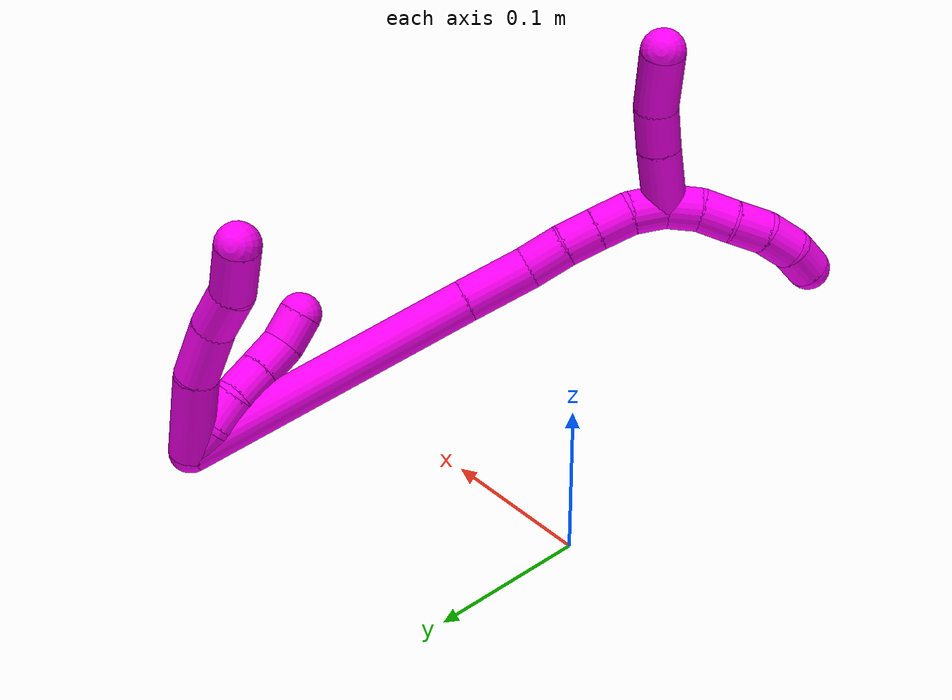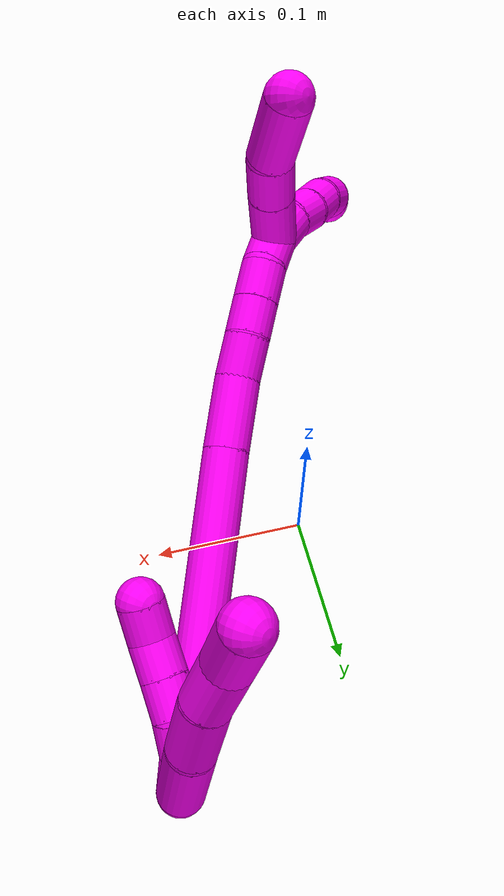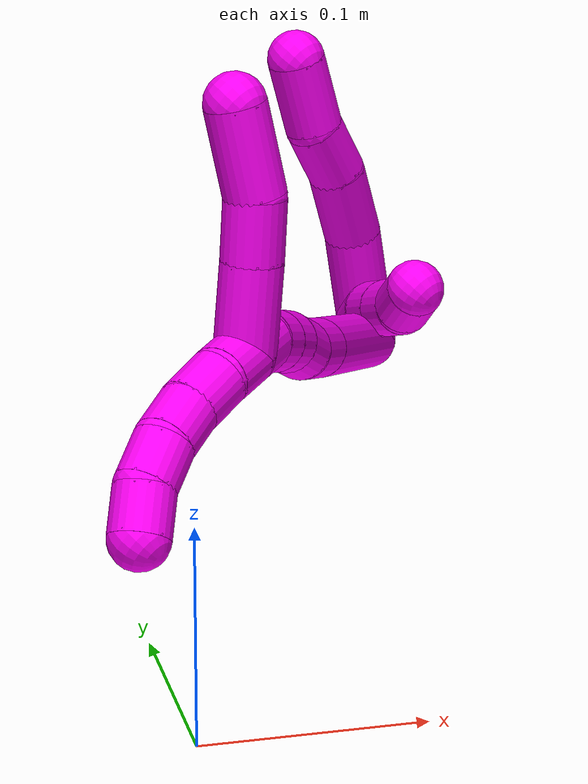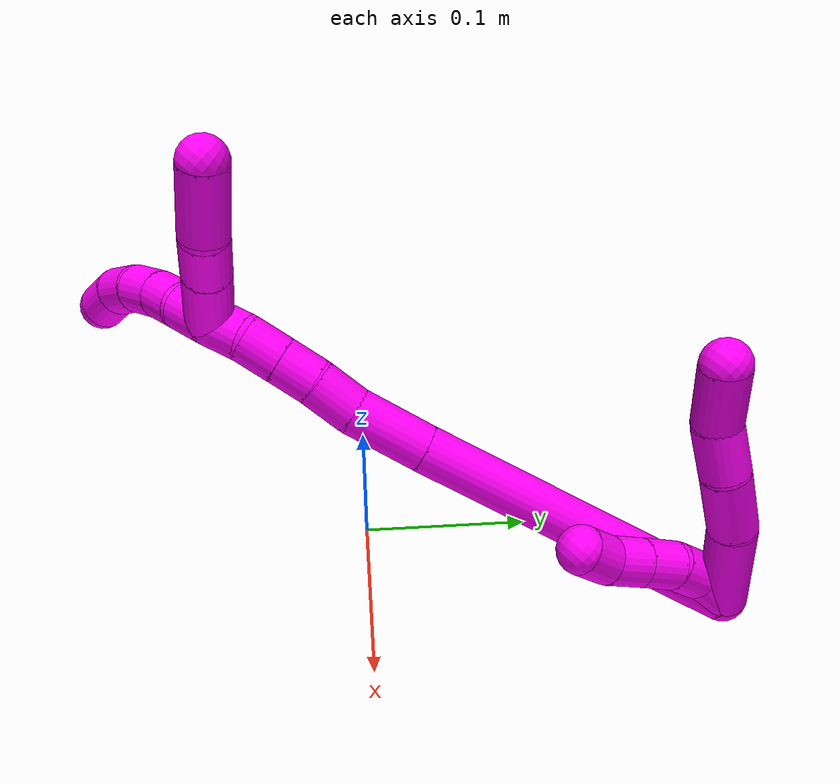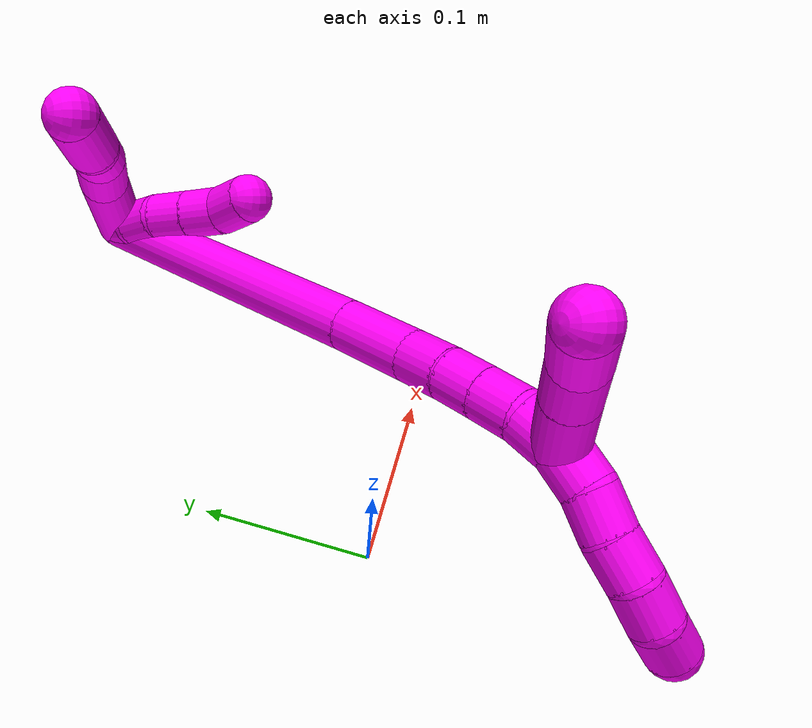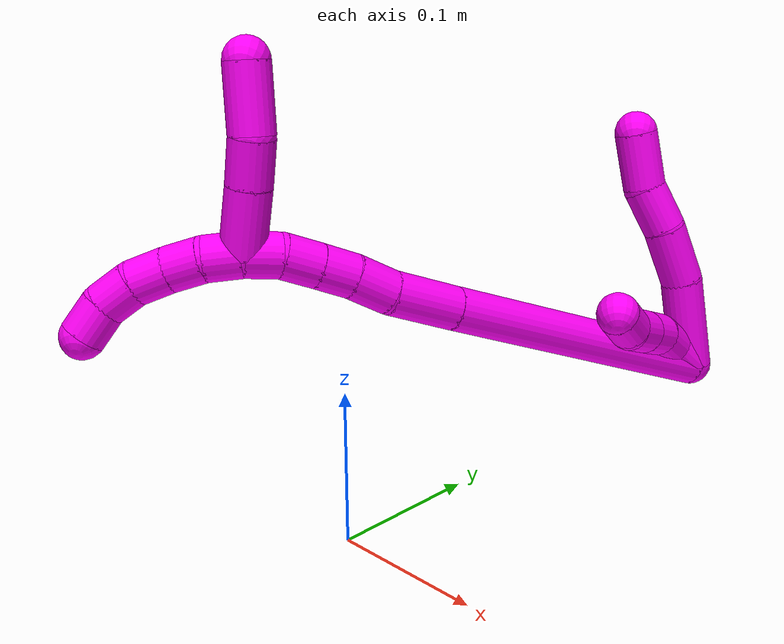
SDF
<sdf version="1.7">
 <world name="default">
  <model name="10">
   <static>0</static>
   <link name="10">
    <collision name="collision-cylinder-e_1_2_8">
     <pose>0.023569 0.002086 0.013637 -0.151816 1.04123 -0.087161</pose>
     <geometry><cylinder><radius>0.0125</radius><length>0.054619</length></cylinder></geometry>
     <surface>
      <friction><ode><mu>1.16</mu><mu2>1.16</mu2><slip1>0</slip1><slip2>0</slip2></ode></friction>
      <contact><ode><kp>1e+06</kp><kd>1</kd><max_vel>0</max_vel><min_depth>0.001</min_depth></ode></contact>
     </surface>
    </collision>
    <visual name="visual-cylinder-e_1_2_8">
     <pose>0.023569 0.002086 0.013637 -0.151816 1.04123 -0.087161</pose>
     <geometry><cylinder><radius>0.0125</radius><length>0.054619</length></cylinder></geometry>
     <material><ambient>1 0 0.964706 1</ambient></material>
    </visual>
    <collision name="collision-cylinder-e_2_8_9">
     <pose>0.063008 0.002191 0.034694 0.260923 1.12008 0.164166</pose>
     <geometry><cylinder><radius>0.0125</radius><length>0.035262</length></cylinder></geometry>
     <surface>
      <friction><ode><mu>1.16</mu><mu2>1.16</mu2><slip1>0</slip1><slip2>0</slip2></ode></friction>
      <contact><ode><kp>1e+06</kp><kd>1</kd><max_vel>0</max_vel><min_depth>0.001</min_depth></ode></contact>
     </surface>
    </collision>
    <visual name="visual-cylinder-e_2_8_9">
     <pose>0.063008 0.002191 0.034694 0.260923 1.12008 0.164166</pose>
     <geometry><cylinder><radius>0.0125</radius><length>0.035262</length></cylinder></geometry>
     <material><ambient>1 0 0.964706 1</ambient></material>
    </visual>
    <collision name="collision-cylinder-e_3_9_10">
     <pose>0.090321 -0.003273 0.048703 0.486305 0.993455 0.267325</pose>
     <geometry><cylinder><radius>0.0125</radius><length>0.027311</length></cylinder></geometry>
     <surface>
      <friction><ode><mu>1.16</mu><mu2>1.16</mu2><slip1>0</slip1><slip2>0</slip2></ode></friction>
      <contact><ode><kp>1e+06</kp><kd>1</kd><max_vel>0</max_vel><min_depth>0.001</min_depth></ode></contact>
     </surface>
    </collision>
    <visual name="visual-cylinder-e_3_9_10">
     <pose>0.090321 -0.003273 0.048703 0.486305 0.993455 0.267325</pose>
     <geometry><cylinder><radius>0.0125</radius><length>0.027311</length></cylinder></geometry>
     <material><ambient>1 0 0.964706 1</ambient></material>
    </visual>
    <collision name="collision-cylinder-e_4_10_6">
     <pose>0.115156 -0.006421 0.064758 -0.035474 0.955288 -0.018363</pose>
     <geometry><cylinder><radius>0.0125</radius><length>0.032808</length></cylinder></geometry>
     <surface>
      <friction><ode><mu>1.16</mu><mu2>1.16</mu2><slip1>0</slip1><slip2>0</slip2></ode></friction>
      <contact><ode><kp>1e+06</kp><kd>1</kd><max_vel>0</max_vel><min_depth>0.001</min_depth></ode></contact>
     </surface>
    </collision>
    <visual name="visual-cylinder-e_4_10_6">
     <pose>0.115156 -0.006421 0.064758 -0.035474 0.955288 -0.018363</pose>
     <geometry><cylinder><radius>0.0125</radius><length>0.032808</length></cylinder></geometry>
     <material><ambient>1 0 0.964706 1</ambient></material>
    </visual>
    <collision name="collision-cylinder-e_1_2_11">
     <pose>0.009267 -0.003755 0.000169 1.52586 1.18549 1.1442</pose>
     <geometry><cylinder><radius>0.0125</radius><length>0.02</length></cylinder></geometry>
     <surface>
      <friction><ode><mu>1.16</mu><mu2>1.16</mu2><slip1>0</slip1><slip2>0</slip2></ode></friction>
      <contact><ode><kp>1e+06</kp><kd>1</kd><max_vel>0</max_vel><min_depth>0.001</min_depth></ode></contact>
     </surface>
    </collision>
    <visual name="visual-cylinder-e_1_2_11">
     <pose>0.009267 -0.003755 0.000169 1.52586 1.18549 1.1442</pose>
     <geometry><cylinder><radius>0.0125</radius><length>0.02</length></cylinder></geometry>
     <material><ambient>1 0 0.964706 1</ambient></material>
    </visual>
    <collision name="collision-cylinder-e_2_11_12">
     <pose>0.027977 -0.009604 -0.002201 2.4518 1.23545 2.20528</pose>
     <geometry><cylinder><radius>0.0125</radius><length>0.02</length></cylinder></geometry>
     <surface>
      <friction><ode><mu>1.16</mu><mu2>1.16</mu2><slip1>0</slip1><slip2>0</slip2></ode></friction>
      <contact><ode><kp>1e+06</kp><kd>1</kd><max_vel>0</max_vel><min_depth>0.001</min_depth></ode></contact>
     </surface>
    </collision>
    <visual name="visual-cylinder-e_2_11_12">
     <pose>0.027977 -0.009604 -0.002201 2.4518 1.23545 2.20528</pose>
     <geometry><cylinder><radius>0.0125</radius><length>0.02</length></cylinder></geometry>
     <material><ambient>1 0 0.964706 1</ambient></material>
    </visual>
    <collision name="collision-cylinder-e_3_12_13">
     <pose>0.045648 -0.014324 -0.00978 2.6613 0.966355 2.26823</pose>
     <geometry><cylinder><radius>0.0125</radius><length>0.02</length></cylinder></geometry>
     <surface>
      <friction><ode><mu>1.16</mu><mu2>1.16</mu2><slip1>0</slip1><slip2>0</slip2></ode></friction>
      <contact><ode><kp>1e+06</kp><kd>1</kd><max_vel>0</max_vel><min_depth>0.001</min_depth></ode></contact>
     </surface>
    </collision>
    <visual name="visual-cylinder-e_3_12_13">
     <pose>0.045648 -0.014324 -0.00978 2.6613 0.966355 2.26823</pose>
     <geometry><cylinder><radius>0.0125</radius><length>0.02</length></cylinder></geometry>
     <material><ambient>1 0 0.964706 1</ambient></material>
    </visual>
    <collision name="collision-cylinder-e_4_13_14">
     <pose>0.062104 -0.019419 -0.019938 2.69205 0.966392 2.3197</pose>
     <geometry><cylinder><radius>0.0125</radius><length>0.02</length></cylinder></geometry>
     <surface>
      <friction><ode><mu>1.16</mu><mu2>1.16</mu2><slip1>0</slip1><slip2>0</slip2></ode></friction>
      <contact><ode><kp>1e+06</kp><kd>1</kd><max_vel>0</max_vel><min_depth>0.001</min_depth></ode></contact>
     </surface>
    </collision>
    <visual name="visual-cylinder-e_4_13_14">
     <pose>0.062104 -0.019419 -0.019938 2.69205 0.966392 2.3197</pose>
     <geometry><cylinder><radius>0.0125</radius><length>0.02</length></cylinder></geometry>
     <material><ambient>1 0 0.964706 1</ambient></material>
    </visual>
    <collision name="collision-cylinder-e_5_14_5">
     <pose>0.080001 -0.023006 -0.027354 2.68893 1.31233 2.56039</pose>
     <geometry><cylinder><radius>0.0125</radius><length>0.02</length></cylinder></geometry>
     <surface>
      <friction><ode><mu>1.16</mu><mu2>1.16</mu2><slip1>0</slip1><slip2>0</slip2></ode></friction>
      <contact><ode><kp>1e+06</kp><kd>1</kd><max_vel>0</max_vel><min_depth>0.001</min_depth></ode></contact>
     </surface>
    </collision>
    <visual name="visual-cylinder-e_5_14_5">
     <pose>0.080001 -0.023006 -0.027354 2.68893 1.31233 2.56039</pose>
     <geometry><cylinder><radius>0.0125</radius><length>0.02</length></cylinder></geometry>
     <material><ambient>1 0 0.964706 1</ambient></material>
    </visual>
    <collision name="collision-cylinder-e_1_2_15">
     <pose>0.065156 -0.053714 -0.021739 1.95535 0.843896 1.17502</pose>
     <geometry><cylinder><radius>0.0125</radius><length>0.174391</length></cylinder></geometry>
     <surface>
      <friction><ode><mu>1.16</mu><mu2>1.16</mu2><slip1>0</slip1><slip2>0</slip2></ode></friction>
      <contact><ode><kp>1e+06</kp><kd>1</kd><max_vel>0</max_vel><min_depth>0.001</min_depth></ode></contact>
     </surface>
    </collision>
    <visual name="visual-cylinder-e_1_2_15">
     <pose>0.065156 -0.053714 -0.021739 1.95535 0.843896 1.17502</pose>
     <geometry><cylinder><radius>0.0125</radius><length>0.174391</length></cylinder></geometry>
     <material><ambient>1 0 0.964706 1</ambient></material>
    </visual>
    <collision name="collision-cylinder-e_2_15_16">
     <pose>0.145263 -0.120082 -0.048018 1.91531 0.838441 1.12918</pose>
     <geometry><cylinder><radius>0.0125</radius><length>0.040213</length></cylinder></geometry>
     <surface>
      <friction><ode><mu>1.16</mu><mu2>1.16</mu2><slip1>0</slip1><slip2>0</slip2></ode></friction>
      <contact><ode><kp>1e+06</kp><kd>1</kd><max_vel>0</max_vel><min_depth>0.001</min_depth></ode></contact>
     </surface>
    </collision>
    <visual name="visual-cylinder-e_2_15_16">
     <pose>0.145263 -0.120082 -0.048018 1.91531 0.838441 1.12918</pose>
     <geometry><cylinder><radius>0.0125</radius><length>0.040213</length></cylinder></geometry>
     <material><ambient>1 0 0.964706 1</ambient></material>
    </visual>
    <collision name="collision-cylinder-e_3_16_17">
     <pose>0.169738 -0.139924 -0.053461 1.6958 0.920519 1.02397</pose>
     <geometry><cylinder><radius>0.0125</radius><length>0.023933</length></cylinder></geometry>
     <surface>
      <friction><ode><mu>1.16</mu><mu2>1.16</mu2><slip1>0</slip1><slip2>0</slip2></ode></friction>
      <contact><ode><kp>1e+06</kp><kd>1</kd><max_vel>0</max_vel><min_depth>0.001</min_depth></ode></contact>
     </surface>
    </collision>
    <visual name="visual-cylinder-e_3_16_17">
     <pose>0.169738 -0.139924 -0.053461 1.6958 0.920519 1.02397</pose>
     <geometry><cylinder><radius>0.0125</radius><length>0.023933</length></cylinder></geometry>
     <material><ambient>1 0 0.964706 1</ambient></material>
    </visual>
    <collision name="collision-cylinder-e_4_17_18">
     <pose>0.186748 -0.153769 -0.055946 1.80397 0.830225 1.0174</pose>
     <geometry><cylinder><radius>0.0125</radius><length>0.020284</length></cylinder></geometry>
     <surface>
      <friction><ode><mu>1.16</mu><mu2>1.16</mu2><slip1>0</slip1><slip2>0</slip2></ode></friction>
      <contact><ode><kp>1e+06</kp><kd>1</kd><max_vel>0</max_vel><min_depth>0.001</min_depth></ode></contact>
     </surface>
    </collision>
    <visual name="visual-cylinder-e_4_17_18">
     <pose>0.186748 -0.153769 -0.055946 1.80397 0.830225 1.0174</pose>
     <geometry><cylinder><radius>0.0125</radius><length>0.020284</length></cylinder></geometry>
     <material><ambient>1 0 0.964706 1</ambient></material>
    </visual>
    <collision name="collision-cylinder-e_5_18_19">
     <pose>0.201874 -0.167475 -0.05922 1.80648 0.811704 0.99818</pose>
     <geometry><cylinder><radius>0.0125</radius><length>0.021065</length></cylinder></geometry>
     <surface>
      <friction><ode><mu>1.16</mu><mu2>1.16</mu2><slip1>0</slip1><slip2>0</slip2></ode></friction>
      <contact><ode><kp>1e+06</kp><kd>1</kd><max_vel>0</max_vel><min_depth>0.001</min_depth></ode></contact>
     </surface>
    </collision>
    <visual name="visual-cylinder-e_5_18_19">
     <pose>0.201874 -0.167475 -0.05922 1.80648 0.811704 0.99818</pose>
     <geometry><cylinder><radius>0.0125</radius><length>0.021065</length></cylinder></geometry>
     <material><ambient>1 0 0.964706 1</ambient></material>
    </visual>
    <collision name="collision-cylinder-e_6_19_1">
     <pose>0.214701 -0.182718 -0.06358 1.88548 0.541709 0.730489</pose>
     <geometry><cylinder><radius>0.0125</radius><length>0.020115</length></cylinder></geometry>
     <surface>
      <friction><ode><mu>1.16</mu><mu2>1.16</mu2><slip1>0</slip1><slip2>0</slip2></ode></friction>
      <contact><ode><kp>1e+06</kp><kd>1</kd><max_vel>0</max_vel><min_depth>0.001</min_depth></ode></contact>
     </surface>
    </collision>
    <visual name="visual-cylinder-e_6_19_1">
     <pose>0.214701 -0.182718 -0.06358 1.88548 0.541709 0.730489</pose>
     <geometry><cylinder><radius>0.0125</radius><length>0.020115</length></cylinder></geometry>
     <material><ambient>1 0 0.964706 1</ambient></material>
    </visual>
    <collision name="collision-cylinder-e_1_1_20">
     <pose>0.234553 -0.183915 -0.05725 -0.661053 0.91017 -0.332696</pose>
     <geometry><cylinder><radius>0.0125</radius><length>0.037149</length></cylinder></geometry>
     <surface>
      <friction><ode><mu>1.16</mu><mu2>1.16</mu2><slip1>0</slip1><slip2>0</slip2></ode></friction>
      <contact><ode><kp>1e+06</kp><kd>1</kd><max_vel>0</max_vel><min_depth>0.001</min_depth></ode></contact>
     </surface>
    </collision>
    <visual name="visual-cylinder-e_1_1_20">
     <pose>0.234553 -0.183915 -0.05725 -0.661053 0.91017 -0.332696</pose>
     <geometry><cylinder><radius>0.0125</radius><length>0.037149</length></cylinder></geometry>
     <material><ambient>1 0 0.964706 1</ambient></material>
    </visual>
    <collision name="collision-cylinder-e_2_20_21">
     <pose>0.259421 -0.172492 -0.041937 -0.611173 0.923401 -0.311393</pose>
     <geometry><cylinder><radius>0.0125</radius><length>0.025579</length></cylinder></geometry>
     <surface>
      <friction><ode><mu>1.16</mu><mu2>1.16</mu2><slip1>0</slip1><slip2>0</slip2></ode></friction>
      <contact><ode><kp>1e+06</kp><kd>1</kd><max_vel>0</max_vel><min_depth>0.001</min_depth></ode></contact>
     </surface>
    </collision>
    <visual name="visual-cylinder-e_2_20_21">
     <pose>0.259421 -0.172492 -0.041937 -0.611173 0.923401 -0.311393</pose>
     <geometry><cylinder><radius>0.0125</radius><length>0.025579</length></cylinder></geometry>
     <material><ambient>1 0 0.964706 1</ambient></material>
    </visual>
    <collision name="collision-cylinder-e_3_21_4">
     <pose>0.28367 -0.165431 -0.02366 -0.216839 0.853785 -0.09894</pose>
     <geometry><cylinder><radius>0.0125</radius><length>0.037272</length></cylinder></geometry>
     <surface>
      <friction><ode><mu>1.16</mu><mu2>1.16</mu2><slip1>0</slip1><slip2>0</slip2></ode></friction>
      <contact><ode><kp>1e+06</kp><kd>1</kd><max_vel>0</max_vel><min_depth>0.001</min_depth></ode></contact>
     </surface>
    </collision>
    <visual name="visual-cylinder-e_3_21_4">
     <pose>0.28367 -0.165431 -0.02366 -0.216839 0.853785 -0.09894</pose>
     <geometry><cylinder><radius>0.0125</radius><length>0.037272</length></cylinder></geometry>
     <material><ambient>1 0 0.964706 1</ambient></material>
    </visual>
    <collision name="collision-cylinder-e_1_1_22">
     <pose>0.222576 -0.200327 -0.068281 1.78355 0.272329 0.336334</pose>
     <geometry><cylinder><radius>0.0125</radius><length>0.02</length></cylinder></geometry>
     <surface>
      <friction><ode><mu>1.16</mu><mu2>1.16</mu2><slip1>0</slip1><slip2>0</slip2></ode></friction>
      <contact><ode><kp>1e+06</kp><kd>1</kd><max_vel>0</max_vel><min_depth>0.001</min_depth></ode></contact>
     </surface>
    </collision>
    <visual name="visual-cylinder-e_1_1_22">
     <pose>0.222576 -0.200327 -0.068281 1.78355 0.272329 0.336334</pose>
     <geometry><cylinder><radius>0.0125</radius><length>0.02</length></cylinder></geometry>
     <material><ambient>1 0 0.964706 1</ambient></material>
    </visual>
    <collision name="collision-cylinder-e_2_22_23">
     <pose>0.225464 -0.219565 -0.072174 1.75791 0.019804 0.023905</pose>
     <geometry><cylinder><radius>0.0125</radius><length>0.02</length></cylinder></geometry>
     <surface>
      <friction><ode><mu>1.16</mu><mu2>1.16</mu2><slip1>0</slip1><slip2>0</slip2></ode></friction>
      <contact><ode><kp>1e+06</kp><kd>1</kd><max_vel>0</max_vel><min_depth>0.001</min_depth></ode></contact>
     </surface>
    </collision>
    <visual name="visual-cylinder-e_2_22_23">
     <pose>0.225464 -0.219565 -0.072174 1.75791 0.019804 0.023905</pose>
     <geometry><cylinder><radius>0.0125</radius><length>0.02</length></cylinder></geometry>
     <material><ambient>1 0 0.964706 1</ambient></material>
    </visual>
    <collision name="collision-cylinder-e_3_23_24">
     <pose>0.226079 -0.238819 -0.077335 1.90749 0.041675 0.058734</pose>
     <geometry><cylinder><radius>0.0125</radius><length>0.02</length></cylinder></geometry>
     <surface>
      <friction><ode><mu>1.16</mu><mu2>1.16</mu2><slip1>0</slip1><slip2>0</slip2></ode></friction>
      <contact><ode><kp>1e+06</kp><kd>1</kd><max_vel>0</max_vel><min_depth>0.001</min_depth></ode></contact>
     </surface>
    </collision>
    <visual name="visual-cylinder-e_3_23_24">
     <pose>0.226079 -0.238819 -0.077335 1.90749 0.041675 0.058734</pose>
     <geometry><cylinder><radius>0.0125</radius><length>0.02</length></cylinder></geometry>
     <material><ambient>1 0 0.964706 1</ambient></material>
    </visual>
    <collision name="collision-cylinder-e_4_24_25">
     <pose>0.224738 -0.256987 -0.08517 2.04947 -0.17667 -0.289439</pose>
     <geometry><cylinder><radius>0.0125</radius><length>0.02</length></cylinder></geometry>
     <surface>
      <friction><ode><mu>1.16</mu><mu2>1.16</mu2><slip1>0</slip1><slip2>0</slip2></ode></friction>
      <contact><ode><kp>1e+06</kp><kd>1</kd><max_vel>0</max_vel><min_depth>0.001</min_depth></ode></contact>
     </surface>
    </collision>
    <visual name="visual-cylinder-e_4_24_25">
     <pose>0.224738 -0.256987 -0.08517 2.04947 -0.17667 -0.289439</pose>
     <geometry><cylinder><radius>0.0125</radius><length>0.02</length></cylinder></geometry>
     <material><ambient>1 0 0.964706 1</ambient></material>
    </visual>
    <collision name="collision-cylinder-e_5_25_3">
     <pose>0.219381 -0.272443 -0.096178 2.33767 -0.368216 -0.825737</pose>
     <geometry><cylinder><radius>0.0125</radius><length>0.02</length></cylinder></geometry>
     <surface>
      <friction><ode><mu>1.16</mu><mu2>1.16</mu2><slip1>0</slip1><slip2>0</slip2></ode></friction>
      <contact><ode><kp>1e+06</kp><kd>1</kd><max_vel>0</max_vel><min_depth>0.001</min_depth></ode></contact>
     </surface>
    </collision>
    <visual name="visual-cylinder-e_5_25_3">
     <pose>0.219381 -0.272443 -0.096178 2.33767 -0.368216 -0.825737</pose>
     <geometry><cylinder><radius>0.0125</radius><length>0.02</length></cylinder></geometry>
     <material><ambient>1 0 0.964706 1</ambient></material>
    </visual>
    <collision name="collision-sphere-3">
     <pose>0.215781 -0.279161 -0.102652 0 -0 0</pose>
     <geometry><sphere><radius>0.0125</radius></sphere></geometry>
     <surface>
      <friction><ode><mu>1.16</mu><mu2>1.16</mu2><slip1>0</slip1><slip2>0</slip2></ode></friction>
      <contact><ode><kp>1e+06</kp><kd>1</kd><max_vel>0</max_vel><min_depth>0.001</min_depth></ode></contact>
     </surface>
    </collision>
    <visual name="visual-sphere-3">
     <pose>0.215781 -0.279161 -0.102652 0 -0 0</pose>
     <geometry><sphere><radius>0.0125</radius></sphere></geometry>
     <material><ambient>1 0 0.964706 1</ambient></material>
    </visual>
    <collision name="collision-sphere-25">
     <pose>0.22298 -0.265725 -0.089704 0 -0 0</pose>
     <geometry><sphere><radius>0.0125</radius></sphere></geometry>
     <surface>
      <friction><ode><mu>1.16</mu><mu2>1.16</mu2><slip1>0</slip1><slip2>0</slip2></ode></friction>
      <contact><ode><kp>1e+06</kp><kd>1</kd><max_vel>0</max_vel><min_depth>0.001</min_depth></ode></contact>
     </surface>
    </collision>
    <visual name="visual-sphere-25">
     <pose>0.22298 -0.265725 -0.089704 0 -0 0</pose>
     <geometry><sphere><radius>0.0125</radius></sphere></geometry>
     <material><ambient>1 0 0.964706 1</ambient></material>
    </visual>
    <collision name="collision-sphere-24">
     <pose>0.226495 -0.248249 -0.080636 0 -0 0</pose>
     <geometry><sphere><radius>0.0125</radius></sphere></geometry>
     <surface>
      <friction><ode><mu>1.16</mu><mu2>1.16</mu2><slip1>0</slip1><slip2>0</slip2></ode></friction>
      <contact><ode><kp>1e+06</kp><kd>1</kd><max_vel>0</max_vel><min_depth>0.001</min_depth></ode></contact>
     </surface>
    </collision>
    <visual name="visual-sphere-24">
     <pose>0.226495 -0.248249 -0.080636 0 -0 0</pose>
     <geometry><sphere><radius>0.0125</radius></sphere></geometry>
     <material><ambient>1 0 0.964706 1</ambient></material>
    </visual>
    <collision name="collision-sphere-23">
     <pose>0.225662 -0.229389 -0.074034 0 -0 0</pose>
     <geometry><sphere><radius>0.0125</radius></sphere></geometry>
     <surface>
      <friction><ode><mu>1.16</mu><mu2>1.16</mu2><slip1>0</slip1><slip2>0</slip2></ode></friction>
      <contact><ode><kp>1e+06</kp><kd>1</kd><max_vel>0</max_vel><min_depth>0.001</min_depth></ode></contact>
     </surface>
    </collision>
    <visual name="visual-sphere-23">
     <pose>0.225662 -0.229389 -0.074034 0 -0 0</pose>
     <geometry><sphere><radius>0.0125</radius></sphere></geometry>
     <material><ambient>1 0 0.964706 1</ambient></material>
    </visual>
    <collision name="collision-sphere-22">
     <pose>0.225266 -0.209742 -0.070314 0 -0 0</pose>
     <geometry><sphere><radius>0.0125</radius></sphere></geometry>
     <surface>
      <friction><ode><mu>1.16</mu><mu2>1.16</mu2><slip1>0</slip1><slip2>0</slip2></ode></friction>
      <contact><ode><kp>1e+06</kp><kd>1</kd><max_vel>0</max_vel><min_depth>0.001</min_depth></ode></contact>
     </surface>
    </collision>
    <visual name="visual-sphere-22">
     <pose>0.225266 -0.209742 -0.070314 0 -0 0</pose>
     <geometry><sphere><radius>0.0125</radius></sphere></geometry>
     <material><ambient>1 0 0.964706 1</ambient></material>
    </visual>
    <collision name="collision-sphere-4">
     <pose>0.297717 -0.162796 -0.0117 0 -0 0</pose>
     <geometry><sphere><radius>0.0125</radius></sphere></geometry>
     <surface>
      <friction><ode><mu>1.16</mu><mu2>1.16</mu2><slip1>0</slip1><slip2>0</slip2></ode></friction>
      <contact><ode><kp>1e+06</kp><kd>1</kd><max_vel>0</max_vel><min_depth>0.001</min_depth></ode></contact>
     </surface>
    </collision>
    <visual name="visual-sphere-4">
     <pose>0.297717 -0.162796 -0.0117 0 -0 0</pose>
     <geometry><sphere><radius>0.0125</radius></sphere></geometry>
     <material><ambient>1 0 0.964706 1</ambient></material>
    </visual>
    <collision name="collision-sphere-21">
     <pose>0.269623 -0.168065 -0.035619 0 -0 0</pose>
     <geometry><sphere><radius>0.0125</radius></sphere></geometry>
     <surface>
      <friction><ode><mu>1.16</mu><mu2>1.16</mu2><slip1>0</slip1><slip2>0</slip2></ode></friction>
      <contact><ode><kp>1e+06</kp><kd>1</kd><max_vel>0</max_vel><min_depth>0.001</min_depth></ode></contact>
     </surface>
    </collision>
    <visual name="visual-sphere-21">
     <pose>0.269623 -0.168065 -0.035619 0 -0 0</pose>
     <geometry><sphere><radius>0.0125</radius></sphere></geometry>
     <material><ambient>1 0 0.964706 1</ambient></material>
    </visual>
    <collision name="collision-sphere-20">
     <pose>0.249219 -0.176918 -0.048254 0 -0 0</pose>
     <geometry><sphere><radius>0.0125</radius></sphere></geometry>
     <surface>
      <friction><ode><mu>1.16</mu><mu2>1.16</mu2><slip1>0</slip1><slip2>0</slip2></ode></friction>
      <contact><ode><kp>1e+06</kp><kd>1</kd><max_vel>0</max_vel><min_depth>0.001</min_depth></ode></contact>
     </surface>
    </collision>
    <visual name="visual-sphere-20">
     <pose>0.249219 -0.176918 -0.048254 0 -0 0</pose>
     <geometry><sphere><radius>0.0125</radius></sphere></geometry>
     <material><ambient>1 0 0.964706 1</ambient></material>
    </visual>
    <collision name="collision-sphere-11">
     <pose>0.018534 -0.007509 0.000338 0 -0 0</pose>
     <geometry><sphere><radius>0.0125</radius></sphere></geometry>
     <surface>
      <friction><ode><mu>1.16</mu><mu2>1.16</mu2><slip1>0</slip1><slip2>0</slip2></ode></friction>
      <contact><ode><kp>1e+06</kp><kd>1</kd><max_vel>0</max_vel><min_depth>0.001</min_depth></ode></contact>
     </surface>
    </collision>
    <visual name="visual-sphere-11">
     <pose>0.018534 -0.007509 0.000338 0 -0 0</pose>
     <geometry><sphere><radius>0.0125</radius></sphere></geometry>
     <material><ambient>1 0 0.964706 1</ambient></material>
    </visual>
    <collision name="collision-sphere-6">
     <pose>0.12855 -0.006085 0.074223 0 -0 0</pose>
     <geometry><sphere><radius>0.0125</radius></sphere></geometry>
     <surface>
      <friction><ode><mu>1.16</mu><mu2>1.16</mu2><slip1>0</slip1><slip2>0</slip2></ode></friction>
      <contact><ode><kp>1e+06</kp><kd>1</kd><max_vel>0</max_vel><min_depth>0.001</min_depth></ode></contact>
     </surface>
    </collision>
    <visual name="visual-sphere-6">
     <pose>0.12855 -0.006085 0.074223 0 -0 0</pose>
     <geometry><sphere><radius>0.0125</radius></sphere></geometry>
     <material><ambient>1 0 0.964706 1</ambient></material>
    </visual>
    <collision name="collision-sphere-10">
     <pose>0.101763 -0.006757 0.055292 0 -0 0</pose>
     <geometry><sphere><radius>0.0125</radius></sphere></geometry>
     <surface>
      <friction><ode><mu>1.16</mu><mu2>1.16</mu2><slip1>0</slip1><slip2>0</slip2></ode></friction>
      <contact><ode><kp>1e+06</kp><kd>1</kd><max_vel>0</max_vel><min_depth>0.001</min_depth></ode></contact>
     </surface>
    </collision>
    <visual name="visual-sphere-10">
     <pose>0.101763 -0.006757 0.055292 0 -0 0</pose>
     <geometry><sphere><radius>0.0125</radius></sphere></geometry>
     <material><ambient>1 0 0.964706 1</ambient></material>
    </visual>
    <collision name="collision-sphere-9">
     <pose>0.078879 0.00021 0.042114 0 -0 0</pose>
     <geometry><sphere><radius>0.0125</radius></sphere></geometry>
     <surface>
      <friction><ode><mu>1.16</mu><mu2>1.16</mu2><slip1>0</slip1><slip2>0</slip2></ode></friction>
      <contact><ode><kp>1e+06</kp><kd>1</kd><max_vel>0</max_vel><min_depth>0.001</min_depth></ode></contact>
     </surface>
    </collision>
    <visual name="visual-sphere-9">
     <pose>0.078879 0.00021 0.042114 0 -0 0</pose>
     <geometry><sphere><radius>0.0125</radius></sphere></geometry>
     <material><ambient>1 0 0.964706 1</ambient></material>
    </visual>
    <collision name="collision-sphere-2">
     <geometry><sphere><radius>0.0125</radius></sphere></geometry>
     <surface>
      <friction><ode><mu>1.16</mu><mu2>1.16</mu2><slip1>0</slip1><slip2>0</slip2></ode></friction>
      <contact><ode><kp>1e+06</kp><kd>1</kd><max_vel>0</max_vel><min_depth>0.001</min_depth></ode></contact>
     </surface>
    </collision>
    <visual name="visual-sphere-2">
     <geometry><sphere><radius>0.0125</radius></sphere></geometry>
     <material><ambient>1 0 0.964706 1</ambient></material>
    </visual>
    <collision name="collision-sphere-19">
     <pose>0.209515 -0.174524 -0.060912 0 -0 0</pose>
     <geometry><sphere><radius>0.0125</radius></sphere></geometry>
     <surface>
      <friction><ode><mu>1.16</mu><mu2>1.16</mu2><slip1>0</slip1><slip2>0</slip2></ode></friction>
      <contact><ode><kp>1e+06</kp><kd>1</kd><max_vel>0</max_vel><min_depth>0.001</min_depth></ode></contact>
     </surface>
    </collision>
    <visual name="visual-sphere-19">
     <pose>0.209515 -0.174524 -0.060912 0 -0 0</pose>
     <geometry><sphere><radius>0.0125</radius></sphere></geometry>
     <material><ambient>1 0 0.964706 1</ambient></material>
    </visual>
    <collision name="collision-sphere-8">
     <pose>0.047138 0.004173 0.027274 0 -0 0</pose>
     <geometry><sphere><radius>0.0125</radius></sphere></geometry>
     <surface>
      <friction><ode><mu>1.16</mu><mu2>1.16</mu2><slip1>0</slip1><slip2>0</slip2></ode></friction>
      <contact><ode><kp>1e+06</kp><kd>1</kd><max_vel>0</max_vel><min_depth>0.001</min_depth></ode></contact>
     </surface>
    </collision>
    <visual name="visual-sphere-8">
     <pose>0.047138 0.004173 0.027274 0 -0 0</pose>
     <geometry><sphere><radius>0.0125</radius></sphere></geometry>
     <material><ambient>1 0 0.964706 1</ambient></material>
    </visual>
    <collision name="collision-sphere-12">
     <pose>0.03742 -0.011698 -0.00474 0 -0 0</pose>
     <geometry><sphere><radius>0.0125</radius></sphere></geometry>
     <surface>
      <friction><ode><mu>1.16</mu><mu2>1.16</mu2><slip1>0</slip1><slip2>0</slip2></ode></friction>
      <contact><ode><kp>1e+06</kp><kd>1</kd><max_vel>0</max_vel><min_depth>0.001</min_depth></ode></contact>
     </surface>
    </collision>
    <visual name="visual-sphere-12">
     <pose>0.03742 -0.011698 -0.00474 0 -0 0</pose>
     <geometry><sphere><radius>0.0125</radius></sphere></geometry>
     <material><ambient>1 0 0.964706 1</ambient></material>
    </visual>
    <collision name="collision-sphere-13">
     <pose>0.053876 -0.01695 -0.01482 0 -0 0</pose>
     <geometry><sphere><radius>0.0125</radius></sphere></geometry>
     <surface>
      <friction><ode><mu>1.16</mu><mu2>1.16</mu2><slip1>0</slip1><slip2>0</slip2></ode></friction>
      <contact><ode><kp>1e+06</kp><kd>1</kd><max_vel>0</max_vel><min_depth>0.001</min_depth></ode></contact>
     </surface>
    </collision>
    <visual name="visual-sphere-13">
     <pose>0.053876 -0.01695 -0.01482 0 -0 0</pose>
     <geometry><sphere><radius>0.0125</radius></sphere></geometry>
     <material><ambient>1 0 0.964706 1</ambient></material>
    </visual>
    <collision name="collision-sphere-14">
     <pose>0.070333 -0.021888 -0.025056 0 -0 0</pose>
     <geometry><sphere><radius>0.0125</radius></sphere></geometry>
     <surface>
      <friction><ode><mu>1.16</mu><mu2>1.16</mu2><slip1>0</slip1><slip2>0</slip2></ode></friction>
      <contact><ode><kp>1e+06</kp><kd>1</kd><max_vel>0</max_vel><min_depth>0.001</min_depth></ode></contact>
     </surface>
    </collision>
    <visual name="visual-sphere-14">
     <pose>0.070333 -0.021888 -0.025056 0 -0 0</pose>
     <geometry><sphere><radius>0.0125</radius></sphere></geometry>
     <material><ambient>1 0 0.964706 1</ambient></material>
    </visual>
    <collision name="collision-sphere-5">
     <pose>0.089668 -0.024124 -0.029653 0 -0 0</pose>
     <geometry><sphere><radius>0.0125</radius></sphere></geometry>
     <surface>
      <friction><ode><mu>1.16</mu><mu2>1.16</mu2><slip1>0</slip1><slip2>0</slip2></ode></friction>
      <contact><ode><kp>1e+06</kp><kd>1</kd><max_vel>0</max_vel><min_depth>0.001</min_depth></ode></contact>
     </surface>
    </collision>
    <visual name="visual-sphere-5">
     <pose>0.089668 -0.024124 -0.029653 0 -0 0</pose>
     <geometry><sphere><radius>0.0125</radius></sphere></geometry>
     <material><ambient>1 0 0.964706 1</ambient></material>
    </visual>
    <collision name="collision-sphere-15">
     <pose>0.130312 -0.107428 -0.043477 0 -0 0</pose>
     <geometry><sphere><radius>0.0125</radius></sphere></geometry>
     <surface>
      <friction><ode><mu>1.16</mu><mu2>1.16</mu2><slip1>0</slip1><slip2>0</slip2></ode></friction>
      <contact><ode><kp>1e+06</kp><kd>1</kd><max_vel>0</max_vel><min_depth>0.001</min_depth></ode></contact>
     </surface>
    </collision>
    <visual name="visual-sphere-15">
     <pose>0.130312 -0.107428 -0.043477 0 -0 0</pose>
     <geometry><sphere><radius>0.0125</radius></sphere></geometry>
     <material><ambient>1 0 0.964706 1</ambient></material>
    </visual>
    <collision name="collision-sphere-16">
     <pose>0.160214 -0.132736 -0.052558 0 -0 0</pose>
     <geometry><sphere><radius>0.0125</radius></sphere></geometry>
     <surface>
      <friction><ode><mu>1.16</mu><mu2>1.16</mu2><slip1>0</slip1><slip2>0</slip2></ode></friction>
      <contact><ode><kp>1e+06</kp><kd>1</kd><max_vel>0</max_vel><min_depth>0.001</min_depth></ode></contact>
     </surface>
    </collision>
    <visual name="visual-sphere-16">
     <pose>0.160214 -0.132736 -0.052558 0 -0 0</pose>
     <geometry><sphere><radius>0.0125</radius></sphere></geometry>
     <material><ambient>1 0 0.964706 1</ambient></material>
    </visual>
    <collision name="collision-sphere-17">
     <pose>0.179262 -0.147112 -0.054365 0 -0 0</pose>
     <geometry><sphere><radius>0.0125</radius></sphere></geometry>
     <surface>
      <friction><ode><mu>1.16</mu><mu2>1.16</mu2><slip1>0</slip1><slip2>0</slip2></ode></friction>
      <contact><ode><kp>1e+06</kp><kd>1</kd><max_vel>0</max_vel><min_depth>0.001</min_depth></ode></contact>
     </surface>
    </collision>
    <visual name="visual-sphere-17">
     <pose>0.179262 -0.147112 -0.054365 0 -0 0</pose>
     <geometry><sphere><radius>0.0125</radius></sphere></geometry>
     <material><ambient>1 0 0.964706 1</ambient></material>
    </visual>
    <collision name="collision-sphere-18">
     <pose>0.194233 -0.160427 -0.057527 0 -0 0</pose>
     <geometry><sphere><radius>0.0125</radius></sphere></geometry>
     <surface>
      <friction><ode><mu>1.16</mu><mu2>1.16</mu2><slip1>0</slip1><slip2>0</slip2></ode></friction>
      <contact><ode><kp>1e+06</kp><kd>1</kd><max_vel>0</max_vel><min_depth>0.001</min_depth></ode></contact>
     </surface>
    </collision>
    <visual name="visual-sphere-18">
     <pose>0.194233 -0.160427 -0.057527 0 -0 0</pose>
     <geometry><sphere><radius>0.0125</radius></sphere></geometry>
     <material><ambient>1 0 0.964706 1</ambient></material>
    </visual>
    <collision name="collision-sphere-1">
     <pose>0.219886 -0.190913 -0.066247 0 -0 0</pose>
     <geometry><sphere><radius>0.0125</radius></sphere></geometry>
     <surface>
      <friction><ode><mu>1.16</mu><mu2>1.16</mu2><slip1>0</slip1><slip2>0</slip2></ode></friction>
      <contact><ode><kp>1e+06</kp><kd>1</kd><max_vel>0</max_vel><min_depth>0.001</min_depth></ode></contact>
     </surface>
    </collision>
    <visual name="visual-sphere-1">
     <pose>0.219886 -0.190913 -0.066247 0 -0 0</pose>
     <geometry><sphere><radius>0.0125</radius></sphere></geometry>
     <material><ambient>1 0 0.964706 1</ambient></material>
    </visual>
    <inertial>
     <pose>0.128221 -0.094068 -0.024648 0 -0 0</pose>
     <mass>0.75</mass>
     <inertia>
      <ixx>0.00047</ixx>
      <ixy>0</ixy>
      <ixz>0</ixz>
      <iyy>0.000534</iyy>
      <iyz>0</iyz>
      <izz>-9.7e-05</izz>
     </inertia>
    </inertial>
   </link>
   <pose>0.11764 0.181818 0.099311 0.477832 -1.00176 -1.46413</pose>
  </model>
 </world>
</sdf>
